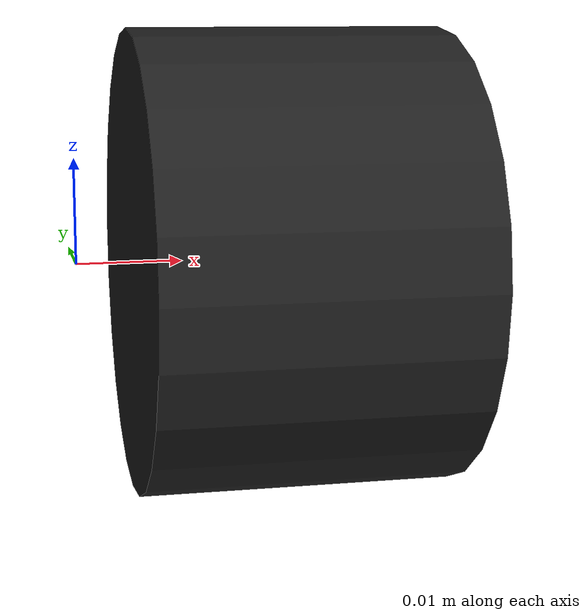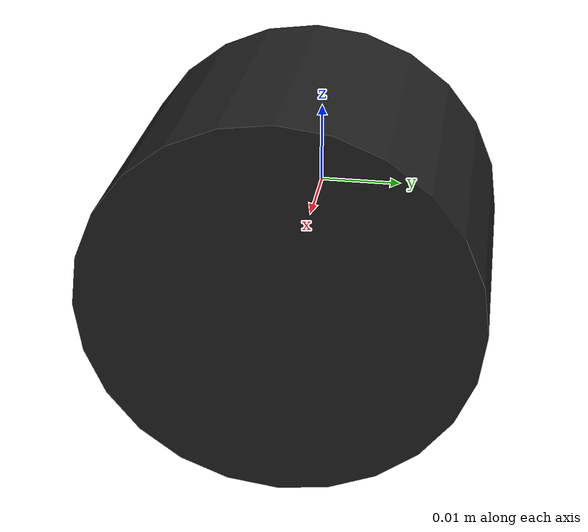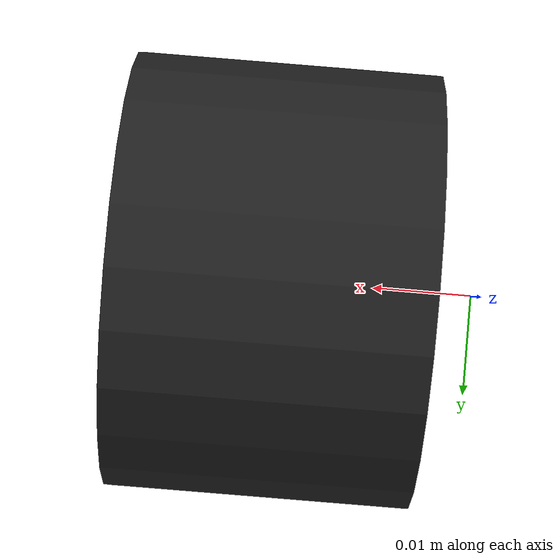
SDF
<?xml version="1.0" ?>
<sdf version="1.6">
  <model name="rover_front_camera">

    <link name="base_link">
      <inertial>
        <mass>0.3</mass>
        <inertia>
          <ixx>0.0004</ixx>
          <ixy>0</ixy>
          <ixz>0</ixz>
          <iyy>0.0004</iyy>
          <iyz>0</iyz>
          <izz>0.0004</izz>
        </inertia>
      </inertial>

      <visual name="lens_visual">
        <pose>0.02 0 0 0 1.5707963 0</pose>
        <geometry>
          <cylinder>
            <radius>0.022</radius>
            <length>0.03</length>
          </cylinder>
        </geometry>
        <material>
          <script>
            <uri>file://media/materials/scripts/gazebo.material</uri>
            <name>Gazebo/FlatBlack</name>
          </script>
        </material>
      </visual>

      <sensor name="front_camera" type="camera">
        <always_on>1</always_on>
        <update_rate>10</update_rate>
        <visualize>true</visualize>
        <camera name="front">
          <!-- 1.5 rad ~= 86 deg, the upstream model's value. -->
          <horizontal_fov>1.5</horizontal_fov>
          <image>
            <width>960</width>
            <height>720</height>
            <format>R8G8B8</format>
          </image>
          <clip>
            <near>0.05</near>
            <far>1500</far>
          </clip>
        </camera>
        <plugin name="camera_stream" filename="libCameraStreamPlugin.so">
          <port>8650</port>
          <label>rover front</label>
          <quality>70</quality>
          <shrink>1</shrink>
          <sleep_when_idle>0</sleep_when_idle>
        </plugin>
      </sensor>
    </link>

  </model>
</sdf>
